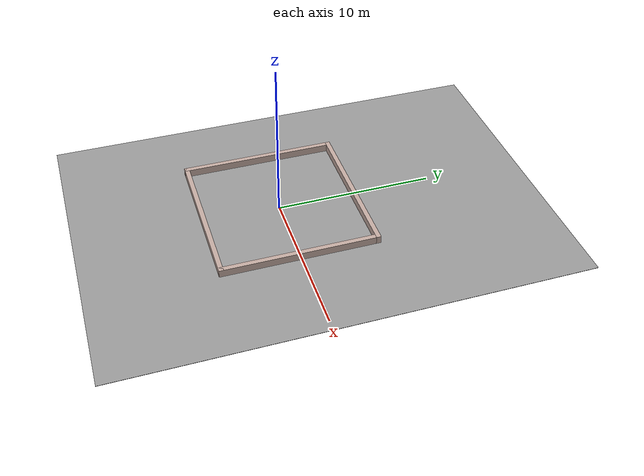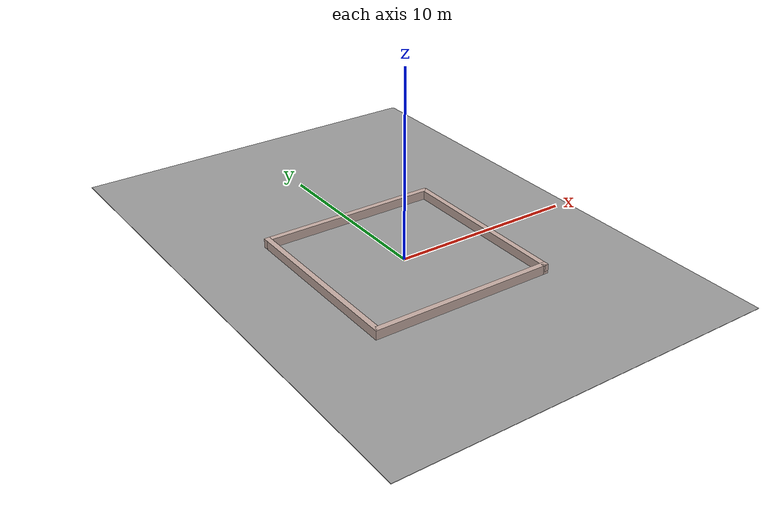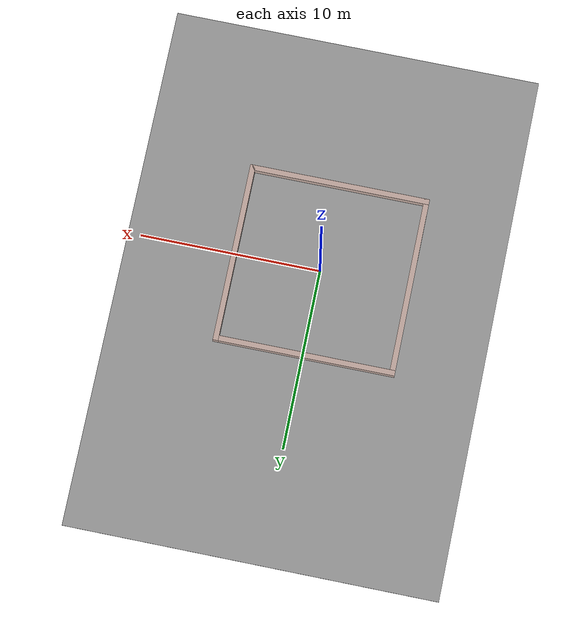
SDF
<sdf version="1.6">
 <world name="default">
  <light name="sun" type="directional">
   <pose>0 0 10 0 -0 0</pose>
   <diffuse>0.8 0.8 0.8 1</diffuse>
   <specular>0.2 0.2 0.2 1</specular>
   <attenuation>
    <range>1000</range>
    <constant>0.9</constant>
    <linear>0.01</linear>
    <quadratic>0.001</quadratic>
   </attenuation>
   <direction>-0.5 0.1 -0.9</direction>
  </light>
  <gravity>0 0 -9.8</gravity>
  <magnetic_field>6e-06 2.3e-05 -4.2e-05</magnetic_field>
  <atmosphere type="adiabatic"/>
  <physics name="default_physics" default="0" type="ode">
   <max_step_size>0.001</max_step_size>
   <real_time_factor>1</real_time_factor>
   <real_time_update_rate>1000</real_time_update_rate>
  </physics>
  <scene><ambient>0.4 0.4 0.4 1</ambient><background>0.7 0.7 0.7 1</background><shadows>1</shadows></scene>
  <spherical_coordinates>
   <surface_model>EARTH_WGS84</surface_model>
   <latitude_deg>0</latitude_deg>
   <longitude_deg>0</longitude_deg>
   <elevation>0</elevation>
   <heading_deg>0</heading_deg>
  </spherical_coordinates>
  <model name="plan">
   <pose>-0.075608 -0.026629 0 0 -0 0</pose>
   <link name="Wall_32">
    <collision name="Wall_32_Collision">
     <geometry><box><size>10 0.3 0.5</size></box></geometry>
     <pose>0 0 0.25 0 -0 0</pose>
    </collision>
    <visual name="Wall_32_Visual">
     <pose>0 0 0.25 0 -0 0</pose>
     <geometry><box><size>10 0.3 0.5</size></box></geometry>
     <material>
      <script><uri>file://media/materials/scripts/gazebo.material</uri><name>Gazebo/Grey</name></script>
      <ambient>0.760784 0.662745 0.627451 1</ambient>
     </material>
     <meta><layer>0</layer></meta>
    </visual>
    <pose>0 -4.85 0 0 -0 0</pose>
   </link>
   <link name="Wall_34">
    <collision name="Wall_34_Collision">
     <geometry><box><size>10 0.3 0.5</size></box></geometry>
     <pose>0 0 0.25 0 -0 0</pose>
    </collision>
    <visual name="Wall_34_Visual">
     <pose>0 0 0.25 0 -0 0</pose>
     <geometry><box><size>10 0.3 0.5</size></box></geometry>
     <material>
      <script><uri>file://media/materials/scripts/gazebo.material</uri><name>Gazebo/Grey</name></script>
      <ambient>0.760784 0.662745 0.627451 1</ambient>
     </material>
     <meta><layer>0</layer></meta>
    </visual>
    <pose>4.85 0 0 0 -0 1.5708</pose>
   </link>
   <link name="Wall_36">
    <collision name="Wall_36_Collision">
     <geometry><box><size>10 0.3 0.5</size></box></geometry>
     <pose>0 0 0.25 0 -0 0</pose>
    </collision>
    <visual name="Wall_36_Visual">
     <pose>0 0 0.25 0 -0 0</pose>
     <geometry><box><size>10 0.3 0.5</size></box></geometry>
     <material>
      <script><uri>file://media/materials/scripts/gazebo.material</uri><name>Gazebo/Grey</name></script>
      <ambient>0.760784 0.662745 0.627451 1</ambient>
     </material>
     <meta><layer>0</layer></meta>
    </visual>
    <pose>0 4.85 0 0 -0 3.14159</pose>
   </link>
   <link name="Wall_38">
    <collision name="Wall_38_Collision">
     <geometry><box><size>10 0.3 0.5</size></box></geometry>
     <pose>0 0 0.25 0 -0 0</pose>
    </collision>
    <visual name="Wall_38_Visual">
     <pose>0 0 0.25 0 -0 0</pose>
     <geometry><box><size>10 0.3 0.5</size></box></geometry>
     <material>
      <script><uri>file://media/materials/scripts/gazebo.material</uri><name>Gazebo/Grey</name></script>
      <ambient>0.760784 0.662745 0.627451 1</ambient>
     </material>
     <meta><layer>0</layer></meta>
    </visual>
    <pose>-4.85 0 0 0 -0 -1.5708</pose>
   </link>
   <static>1</static>
  </model>
  <model name="unit_box">
   <static>1</static>
   <pose>0.503664 1.74576 0 0 -0 0</pose>
   <link name="link">
    <inertial>
     <mass>1</mass>
     <inertia>
      <ixx>0.166667</ixx>
      <ixy>0</ixy>
      <ixz>0</ixz>
      <iyy>0.166667</iyy>
      <iyz>0</iyz>
      <izz>0.166667</izz>
     </inertia>
    </inertial>
    <collision name="collision"><geometry><box><size>20.4535 29.2473 0.026067</size></box></geometry></collision>
    <visual name="visual">
     <geometry><box><size>20.4535 29.2473 0.026067</size></box></geometry>
     <material>
      <script><name>Gazebo/Grey</name><uri>file://media/materials/scripts/gazebo.material</uri></script>
     </material>
    </visual>
   </link>
  </model>
 </world>
</sdf>
